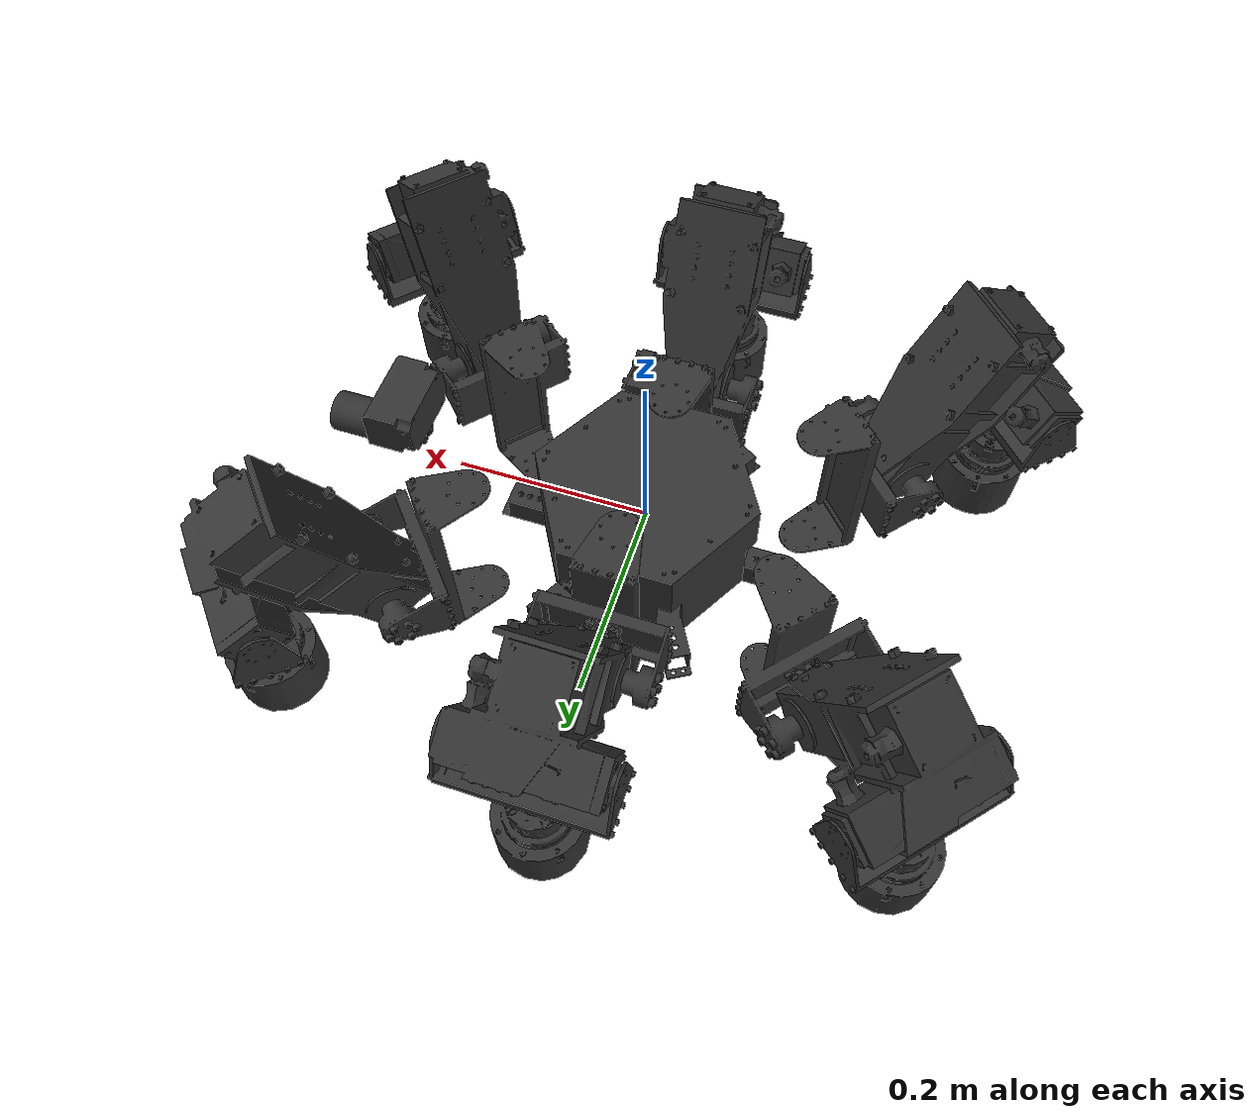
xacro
<?xml version="1.0" ?>
<robot name="hexapod_base" xmlns:xacro="http://www.ros.org/wiki/xacro">

    <xacro:include filename="$(find hexapod_description)/urdf/hexapod.urdf.xacro" />

    <link name="base_link"/>
    <xacro:hexapod_base parent="base_link"/>

    <xacro:include filename="$(find hexapod_description)/urdf/hexapod.gazebo.xacro"/>

    <gazebo>
        <plugin name="ros_control" filename="libgazebo_ros_control.so">
          <robotNamespace></robotNamespace>
        </plugin>
    </gazebo>

</robot>

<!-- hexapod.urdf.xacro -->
<robot xmlns:xacro="http://www.ros.org/wiki/xacro">

    <!-- All meshes are scaled by 0.001 in all dimensions because I exported in mm, ROS uses m-->

    <xacro:macro name="hexapod_base" params="parent">

        <joint name="base_attachment" type="fixed">
            <parent link="${parent}"/>
            <child link="body_link"/>
        </joint>

        <link name="body_link">
            <inertial>
                <origin xyz="0.0 0.0 0.0" rpy="0.0 0.0 0.0"/>
                <mass value="1"/>
                <inertia ixx="0.001" ixy="0.0" ixz="0.0" iyy="0.001" iyz="0.0" izz="0.001"/>
            </inertial>

            <visual>
                <origin xyz="0 0 0.0" rpy="0.0 0.0 0.0"/>
                <geometry>
                    <mesh filename="package://hexapod_description/meshes/visual/body.stl" scale="0.001 0.001 0.001"/>
                </geometry>
                <material name="Grey">
                    <color rgba="0.2 0.2 0.2 1"/>
                </material>
            </visual>

            <collision>
                <origin xyz="0.0 0.0 0.0" rpy="0.0 0.0 0.0"/>
                <geometry>
                    <mesh filename="package://hexapod_description/meshes/collision/body.stl" scale="0.001 0.001 0.001"/>
                </geometry>
            </collision>
        </link>

        <xacro:hexapod_leg xyz="0.1497 0.0797 0.0" rpy="0.0 0.0 0.738" suffix="lf"/>

        <xacro:hexapod_leg xyz="0.0 0.0795 0.0" rpy="0.0 0.0 ${pi/2.0}" suffix="lm"/>

        <xacro:hexapod_leg xyz="-0.1497 0.0797 0.0" rpy="0.0 0.0 2.404" suffix="lr"/>

        <xacro:hexapod_leg xyz="0.1497 -0.0797 0.0" rpy="0.0 0.0 -0.738" suffix="rf"/>

        <xacro:hexapod_leg xyz="0.0 -0.0795 0.0" rpy="0.0 0.0 -${pi/2.0}" suffix="rm"/>

        <xacro:hexapod_leg xyz="-0.1497 -0.0797 0.0" rpy="0.0 0.0 -2.404" suffix="rr"/>

        <joint name="camera_attachment" type="fixed">
            <parent link="body_link"/>
            <child link="front_camera_link"/>
            <origin xyz="0.33 0.0 0.04" rpy="0.0 0.0 0.0"/>
        </joint>

        <link name="front_camera_link">
            <inertial>
                <origin xyz="0.0 0.0 0.0" rpy="0.0 0.0 0.0"/>
                <mass value="1"/>
                <inertia ixx="0.001" ixy="0.0" ixz="0.0" iyy="0.001" iyz="0.0" izz="0.001"/>
            </inertial>

            <visual>
                <origin xyz="0 0 0.0" rpy="0.0 0.0 0.0"/>
                <geometry>
                    <mesh filename="package://hexapod_description/meshes/visual/camera.stl" scale="0.001 0.001 0.001"/>
                </geometry>
                <material name="Grey">
                    <color rgba="0.2 0.2 0.2 1"/>
                </material>
            </visual>

            <collision>
                <origin xyz="0.0 0.0 0.0" rpy="0.0 0.0 0.0"/>
                <geometry>
                    <mesh filename="package://hexapod_description/meshes/collision/camera.stl" scale="0.001 0.001 0.001"/>
                </geometry>
            </collision>
        </link>

        <joint name="lidar_attachment" type="fixed">
            <parent link="body_link"/>
            <child link="lidar_link"/>
            <origin xyz="0.275 0.0 0.079" rpy="0.0 0.0 0.0"/>
        </joint>

        <link name="lidar_link">
            <inertial>
                <origin xyz="0.0 0.0 0.0" rpy="0.0 0.0 0.0"/>
                <mass value="1"/>
                <inertia ixx="0.001" ixy="0.0" ixz="0.0" iyy="0.001" iyz="0.0" izz="0.001"/>
            </inertial>

            <visual>
                <origin xyz="0.0 0.0 0.0" rpy="0.0 0.0 0.0"/>
                <geometry>
                    <mesh filename="package://hexapod_description/meshes/visual/lidar.stl" scale="0.001 0.001 0.001"/>
                </geometry>
                <material name="Grey">
                    <color rgba="0.2 0.2 0.2 1"/>
                </material>
            </visual>

            <collision>
                <origin xyz="0.0 0.0 0.0" rpy="0.0 0.0 0.0"/>
                <geometry>
                    <mesh filename="package://hexapod_description/meshes/collision/lidar.stl" scale="0.001 0.001 0.001"/>
                </geometry>
            </collision>
        </link>

    </xacro:macro>

    <xacro:macro name="hexapod_leg" params="xyz rpy suffix">

        <joint name="coxa_joint_${suffix}" type="revolute">
            <parent link="body_link"/>
            <child link="coxa_link_${suffix}"/>
            <origin xyz="${xyz}" rpy="${rpy}"/>
            <axis xyz="0 0 1"/>
            <xacro:if value="${suffix == 'lm' or suffix == 'rm'}">
                <limit effort="87" velocity="5.6548668" lower="-0.75" upper="0.75"/>
            </xacro:if>
            <xacro:if value="${suffix == 'lf' or suffix == 'rr'}">
                <limit effort="87" velocity="5.6548668" lower="-0.5" upper="1.5"/>
            </xacro:if>
            <xacro:if value="${suffix == 'rf' or suffix == 'lr'}">
                <limit effort="87" velocity="5.6548668" lower="-1.5" upper="0.5"/>
            </xacro:if>
            <dynamics damping="1.0"/>
        </joint>

        <link name="coxa_link_${suffix}">
            <inertial>
                <origin xyz="0.0 0.0 0.0" rpy="0.0 0.0 0.0"/>
                <mass value="1"/>
                <inertia ixx="0.001" ixy="0.0" ixz="0.0" iyy="0.001" iyz="0.0" izz="0.001"/>
            </inertial>

            <visual>
                <origin xyz="0 0 0.0" rpy="0.0 0.0 0.0"/>
                <geometry>
                    <mesh filename="package://hexapod_description/meshes/visual/leg_link_1.stl" scale="0.001 0.001 0.001"/>
                </geometry>
                <material name="Grey">
                    <color rgba="0.2 0.2 0.2 1"/>
                </material>
            </visual>

            <collision>
                <origin xyz="0.0 0.0 0.0" rpy="0.0 0.0 0.0"/>
                <geometry>
                    <mesh filename="package://hexapod_description/meshes/collision/leg_link_1.stl" scale="0.001 0.001 0.001"/>
                </geometry>
            </collision>
        </link>

        <joint name="thigh_joint_${suffix}" type="revolute">
            <parent link="coxa_link_${suffix}"/>
            <child link="thigh_link_${suffix}"/>
            <origin xyz="0.1 0.0 0.0" rpy="0.0 0.0 0.0"/>
            <axis xyz="0 1 0"/>
            <limit effort="87" velocity="5.6548668" lower="-0.68" upper="2.62" />
            <dynamics damping="1.0"/>
        </joint>

        <link name="thigh_link_${suffix}">
            <inertial>
                <origin xyz="0.0 0.0 0.0" rpy="0.0 0.0 0.0"/>
                <mass value="1"/>
                <inertia ixx="0.001" ixy="0.0" ixz="0.0" iyy="0.001" iyz="0.0" izz="0.001"/>
            </inertial>

            <visual>
                <origin xyz="0 0 0.0" rpy="0.0 0.0 0.0"/>
                <geometry>
                    <mesh filename="package://hexapod_description/meshes/visual/leg_link_2.stl" scale="0.001 0.001 0.001"/>
                </geometry>
                <material name="Grey">
                    <color rgba="0.2 0.2 0.2 1"/>
                </material>
            </visual>

            <collision>
                <origin xyz="0.0 0.0 0.0" rpy="0.0 0.0 0.0"/>
                <geometry>
                    <mesh filename="package://hexapod_description/meshes/collision/leg_link_2.stl" scale="0.001 0.001 0.001"/>
                </geometry>
            </collision>
        </link>

        <joint name="tibia_joint_${suffix}" type="revolute">
            <parent link="thigh_link_${suffix}"/>
            <child link="tibia_link_${suffix}"/>
            <origin xyz="0.1199 -0.005 0.07597" rpy="0.0 0.0 0.0"/>
            <axis xyz="0 -1 0"/>
            <limit effort="87" velocity="5.6548668" lower="-0.42" upper="2.44" />
            <dynamics damping="1.0"/>
        </joint>

        <link name="tibia_link_${suffix}">
            <inertial>
                <origin xyz="0.0 0.0 0.0" rpy="0.0 0.0 0.0"/>
                <mass value="1"/>
                <inertia ixx="0.001" ixy="0.0" ixz="0.0" iyy="0.001" iyz="0.0" izz="0.001"/>
            </inertial>

            <visual>
                <origin xyz="0 0 0.0" rpy="0.0 0.0 0.0"/>
                <geometry>
                    <mesh filename="package://hexapod_description/meshes/visual/leg_link_3.stl" scale="0.001 0.001 0.001"/>
                </geometry>
                <material name="Grey">
                    <color rgba="0.2 0.2 0.2 1"/>
                </material>
            </visual>

            <collision>
                <origin xyz="0.0 0.0 0.0" rpy="0.0 0.0 0.0"/>
                <geometry>
                    <mesh filename="package://hexapod_description/meshes/collision/leg_link_3.stl" scale="0.001 0.001 0.001"/>
                </geometry>
            </collision>
        </link>

        <xacro:include filename="$(find hexapod_description)/urdf/hexapod.transmission.xacro"/>
        <xacro:leg_joint_transmission suffix="${suffix}"/>

    </xacro:macro>

</robot>
